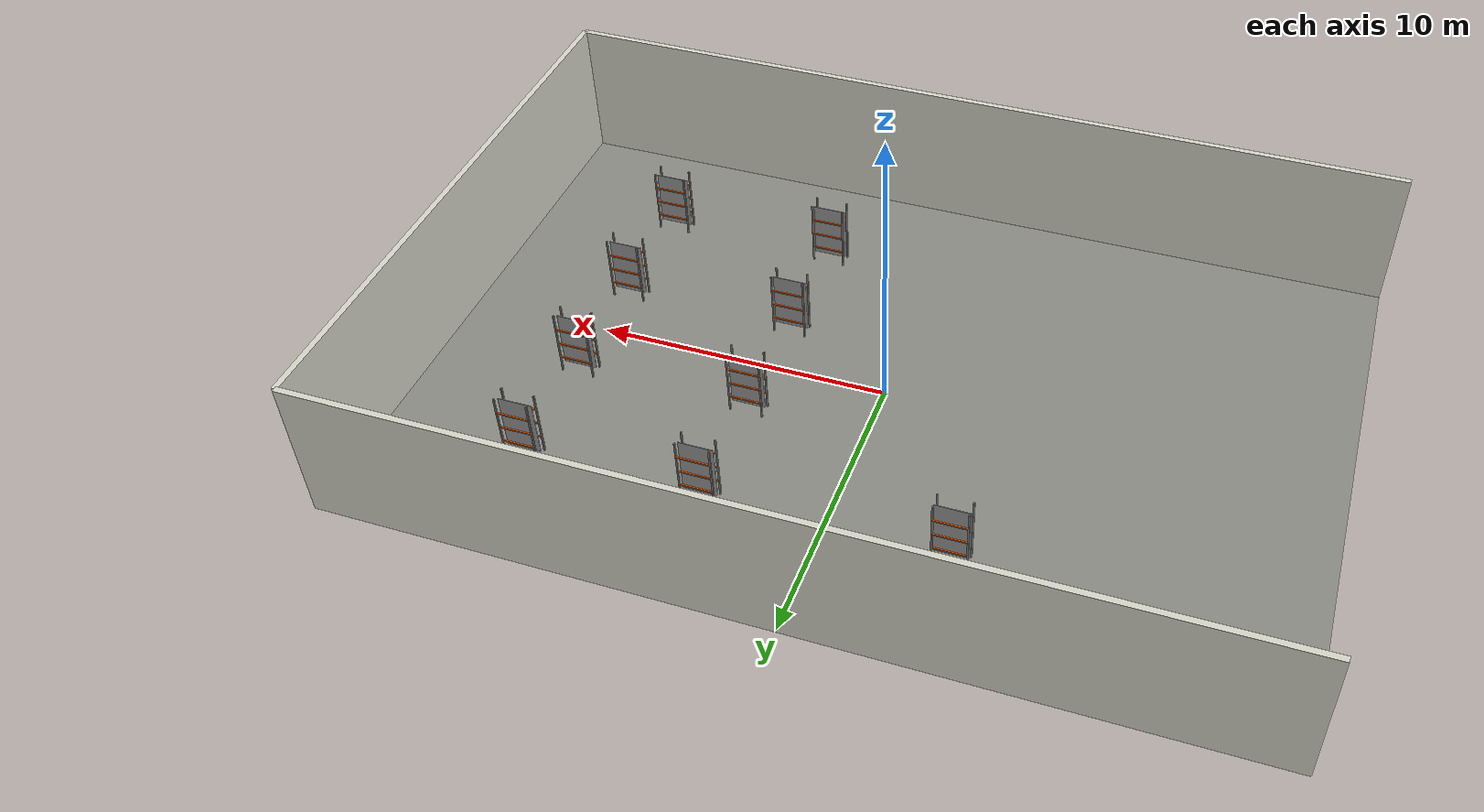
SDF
<sdf version="1.8">
 <world name="amr_world">
  <model name="floor">
   <static>true</static>
   <pose>0 0 -0.01 0 0 0</pose>
   <link name="link">
    <collision name="col"><geometry><box><size>30 20 0.02</size></box></geometry></collision>
    <visual name="vis">
     <geometry><box><size>30 20 0.02</size></box></geometry>
     <material><ambient>0.55 0.55 0.52 1</ambient><diffuse>0.55 0.55 0.52 1</diffuse></material>
    </visual>
   </link>
  </model>
  <model name="wall_north">
   <static>true</static>
   <pose>0 10 2.5 0 0 0</pose>
   <link name="link">
    <collision name="col"><geometry><box><size>30 0.2 5</size></box></geometry></collision>
    <visual name="vis">
     <geometry><box><size>30 0.2 5</size></box></geometry>
     <material><ambient>0.85 0.85 0.80 1</ambient><diffuse>0.85 0.85 0.80 1</diffuse></material>
    </visual>
   </link>
  </model>
  <model name="wall_south">
   <static>true</static>
   <pose>0 -10 2.5 0 0 0</pose>
   <link name="link">
    <collision name="col"><geometry><box><size>30 0.2 5</size></box></geometry></collision>
    <visual name="vis">
     <geometry><box><size>30 0.2 5</size></box></geometry>
     <material><ambient>0.85 0.85 0.80 1</ambient><diffuse>0.85 0.85 0.80 1</diffuse></material>
    </visual>
   </link>
  </model>
  <model name="wall_east">
   <static>true</static>
   <pose>15 0 2.5 0 0 0</pose>
   <link name="link">
    <collision name="col"><geometry><box><size>0.2 20 5</size></box></geometry></collision>
    <visual name="vis">
     <geometry><box><size>0.2 20 5</size></box></geometry>
     <material><ambient>0.85 0.85 0.80 1</ambient><diffuse>0.85 0.85 0.80 1</diffuse></material>
    </visual>
   </link>
  </model>
  <model name="rack_2_4">
   <static>true</static>
   <pose>-4 6 0 0 0 0</pose>
   <link name="link">
    <visual name="p1">
     <pose>0.55 0.25 1.2 0 0 0</pose>
     <geometry><box><size>0.05 0.05 2.4</size></box></geometry>
     <material><ambient>0.4 0.4 0.4 1</ambient><diffuse>0.5 0.5 0.5 1</diffuse></material>
    </visual>
    <collision name="p1c">
     <pose>0.55 0.25 1.2 0 0 0</pose>
     <geometry><box><size>0.05 0.05 2.4</size></box></geometry>
    </collision>
    <visual name="p2">
     <pose>0.55 -0.25 1.2 0 0 0</pose>
     <geometry><box><size>0.05 0.05 2.4</size></box></geometry>
     <material><ambient>0.4 0.4 0.4 1</ambient><diffuse>0.5 0.5 0.5 1</diffuse></material>
    </visual>
    <collision name="p2c">
     <pose>0.55 -0.25 1.2 0 0 0</pose>
     <geometry><box><size>0.05 0.05 2.4</size></box></geometry>
    </collision>
    <visual name="p3">
     <pose>-0.55 0.25 1.2 0 0 0</pose>
     <geometry><box><size>0.05 0.05 2.4</size></box></geometry>
     <material><ambient>0.4 0.4 0.4 1</ambient><diffuse>0.5 0.5 0.5 1</diffuse></material>
    </visual>
    <collision name="p3c">
     <pose>-0.55 0.25 1.2 0 0 0</pose>
     <geometry><box><size>0.05 0.05 2.4</size></box></geometry>
    </collision>
    <visual name="p4">
     <pose>-0.55 -0.25 1.2 0 0 0</pose>
     <geometry><box><size>0.05 0.05 2.4</size></box></geometry>
     <material><ambient>0.4 0.4 0.4 1</ambient><diffuse>0.5 0.5 0.5 1</diffuse></material>
    </visual>
    <collision name="p4c">
     <pose>-0.55 -0.25 1.2 0 0 0</pose>
     <geometry><box><size>0.05 0.05 2.4</size></box></geometry>
    </collision>
    <visual name="b1l">
     <pose>0 0.25 0.60 0 0 0</pose>
     <geometry><box><size>1.15 0.05 0.04</size></box></geometry>
     <material><ambient>0.85 0.35 0.05 1</ambient><diffuse>0.85 0.35 0.05 1</diffuse></material>
    </visual>
    <collision name="b1lc">
     <pose>0 0.25 0.60 0 0 0</pose>
     <geometry><box><size>1.15 0.05 0.04</size></box></geometry>
    </collision>
    <visual name="b1r">
     <pose>0 -0.25 0.60 0 0 0</pose>
     <geometry><box><size>1.15 0.05 0.04</size></box></geometry>
     <material><ambient>0.85 0.35 0.05 1</ambient><diffuse>0.85 0.35 0.05 1</diffuse></material>
    </visual>
    <collision name="b1rc">
     <pose>0 -0.25 0.60 0 0 0</pose>
     <geometry><box><size>1.15 0.05 0.04</size></box></geometry>
    </collision>
    <visual name="b2l">
     <pose>0 0.25 1.20 0 0 0</pose>
     <geometry><box><size>1.15 0.05 0.04</size></box></geometry>
     <material><ambient>0.85 0.35 0.05 1</ambient><diffuse>0.85 0.35 0.05 1</diffuse></material>
    </visual>
    <collision name="b2lc">
     <pose>0 0.25 1.20 0 0 0</pose>
     <geometry><box><size>1.15 0.05 0.04</size></box></geometry>
    </collision>
    <visual name="b2r">
     <pose>0 -0.25 1.20 0 0 0</pose>
     <geometry><box><size>1.15 0.05 0.04</size></box></geometry>
     <material><ambient>0.85 0.35 0.05 1</ambient><diffuse>0.85 0.35 0.05 1</diffuse></material>
    </visual>
    <collision name="b2rc">
     <pose>0 -0.25 1.20 0 0 0</pose>
     <geometry><box><size>1.15 0.05 0.04</size></box></geometry>
    </collision>
    <visual name="b3l">
     <pose>0 0.25 1.80 0 0 0</pose>
     <geometry><box><size>1.15 0.05 0.04</size></box></geometry>
     <material><ambient>0.85 0.35 0.05 1</ambient><diffuse>0.85 0.35 0.05 1</diffuse></material>
    </visual>
    <collision name="b3lc">
     <pose>0 0.25 1.80 0 0 0</pose>
     <geometry><box><size>1.15 0.05 0.04</size></box></geometry>
    </collision>
    <visual name="b3r">
     <pose>0 -0.25 1.80 0 0 0</pose>
     <geometry><box><size>1.15 0.05 0.04</size></box></geometry>
     <material><ambient>0.85 0.35 0.05 1</ambient><diffuse>0.85 0.35 0.05 1</diffuse></material>
    </visual>
    <collision name="b3rc">
     <pose>0 -0.25 1.80 0 0 0</pose>
     <geometry><box><size>1.15 0.05 0.04</size></box></geometry>
    </collision>
    <visual name="brace">
     <pose>0 0 1.2 0 0 0</pose>
     <geometry><box><size>1.15 0.02 2.0</size></box></geometry>
     <material><ambient>0.6 0.6 0.6 1</ambient><diffuse>0.6 0.6 0.6 1</diffuse></material>
    </visual>
   </link>
  </model>
  <model name="rack_3_1">
   <static>true</static>
   <pose>4 -6 0 0 0 0</pose>
   <link name="link">
    <visual name="p1">
     <pose>0.55 0.25 1.2 0 0 0</pose>
     <geometry><box><size>0.05 0.05 2.4</size></box></geometry>
     <material><ambient>0.4 0.4 0.4 1</ambient><diffuse>0.5 0.5 0.5 1</diffuse></material>
    </visual>
    <collision name="p1c">
     <pose>0.55 0.25 1.2 0 0 0</pose>
     <geometry><box><size>0.05 0.05 2.4</size></box></geometry>
    </collision>
    <visual name="p2">
     <pose>0.55 -0.25 1.2 0 0 0</pose>
     <geometry><box><size>0.05 0.05 2.4</size></box></geometry>
     <material><ambient>0.4 0.4 0.4 1</ambient><diffuse>0.5 0.5 0.5 1</diffuse></material>
    </visual>
    <collision name="p2c">
     <pose>0.55 -0.25 1.2 0 0 0</pose>
     <geometry><box><size>0.05 0.05 2.4</size></box></geometry>
    </collision>
    <visual name="p3">
     <pose>-0.55 0.25 1.2 0 0 0</pose>
     <geometry><box><size>0.05 0.05 2.4</size></box></geometry>
     <material><ambient>0.4 0.4 0.4 1</ambient><diffuse>0.5 0.5 0.5 1</diffuse></material>
    </visual>
    <collision name="p3c">
     <pose>-0.55 0.25 1.2 0 0 0</pose>
     <geometry><box><size>0.05 0.05 2.4</size></box></geometry>
    </collision>
    <visual name="p4">
     <pose>-0.55 -0.25 1.2 0 0 0</pose>
     <geometry><box><size>0.05 0.05 2.4</size></box></geometry>
     <material><ambient>0.4 0.4 0.4 1</ambient><diffuse>0.5 0.5 0.5 1</diffuse></material>
    </visual>
    <collision name="p4c">
     <pose>-0.55 -0.25 1.2 0 0 0</pose>
     <geometry><box><size>0.05 0.05 2.4</size></box></geometry>
    </collision>
    <visual name="b1l">
     <pose>0 0.25 0.60 0 0 0</pose>
     <geometry><box><size>1.15 0.05 0.04</size></box></geometry>
     <material><ambient>0.85 0.35 0.05 1</ambient><diffuse>0.85 0.35 0.05 1</diffuse></material>
    </visual>
    <collision name="b1lc">
     <pose>0 0.25 0.60 0 0 0</pose>
     <geometry><box><size>1.15 0.05 0.04</size></box></geometry>
    </collision>
    <visual name="b1r">
     <pose>0 -0.25 0.60 0 0 0</pose>
     <geometry><box><size>1.15 0.05 0.04</size></box></geometry>
     <material><ambient>0.85 0.35 0.05 1</ambient><diffuse>0.85 0.35 0.05 1</diffuse></material>
    </visual>
    <collision name="b1rc">
     <pose>0 -0.25 0.60 0 0 0</pose>
     <geometry><box><size>1.15 0.05 0.04</size></box></geometry>
    </collision>
    <visual name="b2l">
     <pose>0 0.25 1.20 0 0 0</pose>
     <geometry><box><size>1.15 0.05 0.04</size></box></geometry>
     <material><ambient>0.85 0.35 0.05 1</ambient><diffuse>0.85 0.35 0.05 1</diffuse></material>
    </visual>
    <collision name="b2lc">
     <pose>0 0.25 1.20 0 0 0</pose>
     <geometry><box><size>1.15 0.05 0.04</size></box></geometry>
    </collision>
    <visual name="b2r">
     <pose>0 -0.25 1.20 0 0 0</pose>
     <geometry><box><size>1.15 0.05 0.04</size></box></geometry>
     <material><ambient>0.85 0.35 0.05 1</ambient><diffuse>0.85 0.35 0.05 1</diffuse></material>
    </visual>
    <collision name="b2rc">
     <pose>0 -0.25 1.20 0 0 0</pose>
     <geometry><box><size>1.15 0.05 0.04</size></box></geometry>
    </collision>
    <visual name="b3l">
     <pose>0 0.25 1.80 0 0 0</pose>
     <geometry><box><size>1.15 0.05 0.04</size></box></geometry>
     <material><ambient>0.85 0.35 0.05 1</ambient><diffuse>0.85 0.35 0.05 1</diffuse></material>
    </visual>
    <collision name="b3lc">
     <pose>0 0.25 1.80 0 0 0</pose>
     <geometry><box><size>1.15 0.05 0.04</size></box></geometry>
    </collision>
    <visual name="b3r">
     <pose>0 -0.25 1.80 0 0 0</pose>
     <geometry><box><size>1.15 0.05 0.04</size></box></geometry>
     <material><ambient>0.85 0.35 0.05 1</ambient><diffuse>0.85 0.35 0.05 1</diffuse></material>
    </visual>
    <collision name="b3rc">
     <pose>0 -0.25 1.80 0 0 0</pose>
     <geometry><box><size>1.15 0.05 0.04</size></box></geometry>
    </collision>
    <visual name="brace">
     <pose>0 0 1.2 0 0 0</pose>
     <geometry><box><size>1.15 0.02 2.0</size></box></geometry>
     <material><ambient>0.6 0.6 0.6 1</ambient><diffuse>0.6 0.6 0.6 1</diffuse></material>
    </visual>
   </link>
  </model>
  <model name="rack_3_2">
   <static>true</static>
   <pose>4 -2 0 0 0 0</pose>
   <link name="link">
    <visual name="p1">
     <pose>0.55 0.25 1.2 0 0 0</pose>
     <geometry><box><size>0.05 0.05 2.4</size></box></geometry>
     <material><ambient>0.4 0.4 0.4 1</ambient><diffuse>0.5 0.5 0.5 1</diffuse></material>
    </visual>
    <collision name="p1c">
     <pose>0.55 0.25 1.2 0 0 0</pose>
     <geometry><box><size>0.05 0.05 2.4</size></box></geometry>
    </collision>
    <visual name="p2">
     <pose>0.55 -0.25 1.2 0 0 0</pose>
     <geometry><box><size>0.05 0.05 2.4</size></box></geometry>
     <material><ambient>0.4 0.4 0.4 1</ambient><diffuse>0.5 0.5 0.5 1</diffuse></material>
    </visual>
    <collision name="p2c">
     <pose>0.55 -0.25 1.2 0 0 0</pose>
     <geometry><box><size>0.05 0.05 2.4</size></box></geometry>
    </collision>
    <visual name="p3">
     <pose>-0.55 0.25 1.2 0 0 0</pose>
     <geometry><box><size>0.05 0.05 2.4</size></box></geometry>
     <material><ambient>0.4 0.4 0.4 1</ambient><diffuse>0.5 0.5 0.5 1</diffuse></material>
    </visual>
    <collision name="p3c">
     <pose>-0.55 0.25 1.2 0 0 0</pose>
     <geometry><box><size>0.05 0.05 2.4</size></box></geometry>
    </collision>
    <visual name="p4">
     <pose>-0.55 -0.25 1.2 0 0 0</pose>
     <geometry><box><size>0.05 0.05 2.4</size></box></geometry>
     <material><ambient>0.4 0.4 0.4 1</ambient><diffuse>0.5 0.5 0.5 1</diffuse></material>
    </visual>
    <collision name="p4c">
     <pose>-0.55 -0.25 1.2 0 0 0</pose>
     <geometry><box><size>0.05 0.05 2.4</size></box></geometry>
    </collision>
    <visual name="b1l">
     <pose>0 0.25 0.60 0 0 0</pose>
     <geometry><box><size>1.15 0.05 0.04</size></box></geometry>
     <material><ambient>0.85 0.35 0.05 1</ambient><diffuse>0.85 0.35 0.05 1</diffuse></material>
    </visual>
    <collision name="b1lc">
     <pose>0 0.25 0.60 0 0 0</pose>
     <geometry><box><size>1.15 0.05 0.04</size></box></geometry>
    </collision>
    <visual name="b1r">
     <pose>0 -0.25 0.60 0 0 0</pose>
     <geometry><box><size>1.15 0.05 0.04</size></box></geometry>
     <material><ambient>0.85 0.35 0.05 1</ambient><diffuse>0.85 0.35 0.05 1</diffuse></material>
    </visual>
    <collision name="b1rc">
     <pose>0 -0.25 0.60 0 0 0</pose>
     <geometry><box><size>1.15 0.05 0.04</size></box></geometry>
    </collision>
    <visual name="b2l">
     <pose>0 0.25 1.20 0 0 0</pose>
     <geometry><box><size>1.15 0.05 0.04</size></box></geometry>
     <material><ambient>0.85 0.35 0.05 1</ambient><diffuse>0.85 0.35 0.05 1</diffuse></material>
    </visual>
    <collision name="b2lc">
     <pose>0 0.25 1.20 0 0 0</pose>
     <geometry><box><size>1.15 0.05 0.04</size></box></geometry>
    </collision>
    <visual name="b2r">
     <pose>0 -0.25 1.20 0 0 0</pose>
     <geometry><box><size>1.15 0.05 0.04</size></box></geometry>
     <material><ambient>0.85 0.35 0.05 1</ambient><diffuse>0.85 0.35 0.05 1</diffuse></material>
    </visual>
    <collision name="b2rc">
     <pose>0 -0.25 1.20 0 0 0</pose>
     <geometry><box><size>1.15 0.05 0.04</size></box></geometry>
    </collision>
    <visual name="b3l">
     <pose>0 0.25 1.80 0 0 0</pose>
     <geometry><box><size>1.15 0.05 0.04</size></box></geometry>
     <material><ambient>0.85 0.35 0.05 1</ambient><diffuse>0.85 0.35 0.05 1</diffuse></material>
    </visual>
    <collision name="b3lc">
     <pose>0 0.25 1.80 0 0 0</pose>
     <geometry><box><size>1.15 0.05 0.04</size></box></geometry>
    </collision>
    <visual name="b3r">
     <pose>0 -0.25 1.80 0 0 0</pose>
     <geometry><box><size>1.15 0.05 0.04</size></box></geometry>
     <material><ambient>0.85 0.35 0.05 1</ambient><diffuse>0.85 0.35 0.05 1</diffuse></material>
    </visual>
    <collision name="b3rc">
     <pose>0 -0.25 1.80 0 0 0</pose>
     <geometry><box><size>1.15 0.05 0.04</size></box></geometry>
    </collision>
    <visual name="brace">
     <pose>0 0 1.2 0 0 0</pose>
     <geometry><box><size>1.15 0.02 2.0</size></box></geometry>
     <material><ambient>0.6 0.6 0.6 1</ambient><diffuse>0.6 0.6 0.6 1</diffuse></material>
    </visual>
   </link>
  </model>
  <model name="rack_3_3">
   <static>true</static>
   <pose>4 2 0 0 0 0</pose>
   <link name="link">
    <visual name="p1">
     <pose>0.55 0.25 1.2 0 0 0</pose>
     <geometry><box><size>0.05 0.05 2.4</size></box></geometry>
     <material><ambient>0.4 0.4 0.4 1</ambient><diffuse>0.5 0.5 0.5 1</diffuse></material>
    </visual>
    <collision name="p1c">
     <pose>0.55 0.25 1.2 0 0 0</pose>
     <geometry><box><size>0.05 0.05 2.4</size></box></geometry>
    </collision>
    <visual name="p2">
     <pose>0.55 -0.25 1.2 0 0 0</pose>
     <geometry><box><size>0.05 0.05 2.4</size></box></geometry>
     <material><ambient>0.4 0.4 0.4 1</ambient><diffuse>0.5 0.5 0.5 1</diffuse></material>
    </visual>
    <collision name="p2c">
     <pose>0.55 -0.25 1.2 0 0 0</pose>
     <geometry><box><size>0.05 0.05 2.4</size></box></geometry>
    </collision>
    <visual name="p3">
     <pose>-0.55 0.25 1.2 0 0 0</pose>
     <geometry><box><size>0.05 0.05 2.4</size></box></geometry>
     <material><ambient>0.4 0.4 0.4 1</ambient><diffuse>0.5 0.5 0.5 1</diffuse></material>
    </visual>
    <collision name="p3c">
     <pose>-0.55 0.25 1.2 0 0 0</pose>
     <geometry><box><size>0.05 0.05 2.4</size></box></geometry>
    </collision>
    <visual name="p4">
     <pose>-0.55 -0.25 1.2 0 0 0</pose>
     <geometry><box><size>0.05 0.05 2.4</size></box></geometry>
     <material><ambient>0.4 0.4 0.4 1</ambient><diffuse>0.5 0.5 0.5 1</diffuse></material>
    </visual>
    <collision name="p4c">
     <pose>-0.55 -0.25 1.2 0 0 0</pose>
     <geometry><box><size>0.05 0.05 2.4</size></box></geometry>
    </collision>
    <visual name="b1l">
     <pose>0 0.25 0.60 0 0 0</pose>
     <geometry><box><size>1.15 0.05 0.04</size></box></geometry>
     <material><ambient>0.85 0.35 0.05 1</ambient><diffuse>0.85 0.35 0.05 1</diffuse></material>
    </visual>
    <collision name="b1lc">
     <pose>0 0.25 0.60 0 0 0</pose>
     <geometry><box><size>1.15 0.05 0.04</size></box></geometry>
    </collision>
    <visual name="b1r">
     <pose>0 -0.25 0.60 0 0 0</pose>
     <geometry><box><size>1.15 0.05 0.04</size></box></geometry>
     <material><ambient>0.85 0.35 0.05 1</ambient><diffuse>0.85 0.35 0.05 1</diffuse></material>
    </visual>
    <collision name="b1rc">
     <pose>0 -0.25 0.60 0 0 0</pose>
     <geometry><box><size>1.15 0.05 0.04</size></box></geometry>
    </collision>
    <visual name="b2l">
     <pose>0 0.25 1.20 0 0 0</pose>
     <geometry><box><size>1.15 0.05 0.04</size></box></geometry>
     <material><ambient>0.85 0.35 0.05 1</ambient><diffuse>0.85 0.35 0.05 1</diffuse></material>
    </visual>
    <collision name="b2lc">
     <pose>0 0.25 1.20 0 0 0</pose>
     <geometry><box><size>1.15 0.05 0.04</size></box></geometry>
    </collision>
    <visual name="b2r">
     <pose>0 -0.25 1.20 0 0 0</pose>
     <geometry><box><size>1.15 0.05 0.04</size></box></geometry>
     <material><ambient>0.85 0.35 0.05 1</ambient><diffuse>0.85 0.35 0.05 1</diffuse></material>
    </visual>
    <collision name="b2rc">
     <pose>0 -0.25 1.20 0 0 0</pose>
     <geometry><box><size>1.15 0.05 0.04</size></box></geometry>
    </collision>
    <visual name="b3l">
     <pose>0 0.25 1.80 0 0 0</pose>
     <geometry><box><size>1.15 0.05 0.04</size></box></geometry>
     <material><ambient>0.85 0.35 0.05 1</ambient><diffuse>0.85 0.35 0.05 1</diffuse></material>
    </visual>
    <collision name="b3lc">
     <pose>0 0.25 1.80 0 0 0</pose>
     <geometry><box><size>1.15 0.05 0.04</size></box></geometry>
    </collision>
    <visual name="b3r">
     <pose>0 -0.25 1.80 0 0 0</pose>
     <geometry><box><size>1.15 0.05 0.04</size></box></geometry>
     <material><ambient>0.85 0.35 0.05 1</ambient><diffuse>0.85 0.35 0.05 1</diffuse></material>
    </visual>
    <collision name="b3rc">
     <pose>0 -0.25 1.80 0 0 0</pose>
     <geometry><box><size>1.15 0.05 0.04</size></box></geometry>
    </collision>
    <visual name="brace">
     <pose>0 0 1.2 0 0 0</pose>
     <geometry><box><size>1.15 0.02 2.0</size></box></geometry>
     <material><ambient>0.6 0.6 0.6 1</ambient><diffuse>0.6 0.6 0.6 1</diffuse></material>
    </visual>
   </link>
  </model>
  <model name="rack_3_4">
   <static>true</static>
   <pose>4 6 0 0 0 0</pose>
   <link name="link">
    <visual name="p1">
     <pose>0.55 0.25 1.2 0 0 0</pose>
     <geometry><box><size>0.05 0.05 2.4</size></box></geometry>
     <material><ambient>0.4 0.4 0.4 1</ambient><diffuse>0.5 0.5 0.5 1</diffuse></material>
    </visual>
    <collision name="p1c">
     <pose>0.55 0.25 1.2 0 0 0</pose>
     <geometry><box><size>0.05 0.05 2.4</size></box></geometry>
    </collision>
    <visual name="p2">
     <pose>0.55 -0.25 1.2 0 0 0</pose>
     <geometry><box><size>0.05 0.05 2.4</size></box></geometry>
     <material><ambient>0.4 0.4 0.4 1</ambient><diffuse>0.5 0.5 0.5 1</diffuse></material>
    </visual>
    <collision name="p2c">
     <pose>0.55 -0.25 1.2 0 0 0</pose>
     <geometry><box><size>0.05 0.05 2.4</size></box></geometry>
    </collision>
    <visual name="p3">
     <pose>-0.55 0.25 1.2 0 0 0</pose>
     <geometry><box><size>0.05 0.05 2.4</size></box></geometry>
     <material><ambient>0.4 0.4 0.4 1</ambient><diffuse>0.5 0.5 0.5 1</diffuse></material>
    </visual>
    <collision name="p3c">
     <pose>-0.55 0.25 1.2 0 0 0</pose>
     <geometry><box><size>0.05 0.05 2.4</size></box></geometry>
    </collision>
    <visual name="p4">
     <pose>-0.55 -0.25 1.2 0 0 0</pose>
     <geometry><box><size>0.05 0.05 2.4</size></box></geometry>
     <material><ambient>0.4 0.4 0.4 1</ambient><diffuse>0.5 0.5 0.5 1</diffuse></material>
    </visual>
    <collision name="p4c">
     <pose>-0.55 -0.25 1.2 0 0 0</pose>
     <geometry><box><size>0.05 0.05 2.4</size></box></geometry>
    </collision>
    <visual name="b1l">
     <pose>0 0.25 0.60 0 0 0</pose>
     <geometry><box><size>1.15 0.05 0.04</size></box></geometry>
     <material><ambient>0.85 0.35 0.05 1</ambient><diffuse>0.85 0.35 0.05 1</diffuse></material>
    </visual>
    <collision name="b1lc">
     <pose>0 0.25 0.60 0 0 0</pose>
     <geometry><box><size>1.15 0.05 0.04</size></box></geometry>
    </collision>
    <visual name="b1r">
     <pose>0 -0.25 0.60 0 0 0</pose>
     <geometry><box><size>1.15 0.05 0.04</size></box></geometry>
     <material><ambient>0.85 0.35 0.05 1</ambient><diffuse>0.85 0.35 0.05 1</diffuse></material>
    </visual>
    <collision name="b1rc">
     <pose>0 -0.25 0.60 0 0 0</pose>
     <geometry><box><size>1.15 0.05 0.04</size></box></geometry>
    </collision>
    <visual name="b2l">
     <pose>0 0.25 1.20 0 0 0</pose>
     <geometry><box><size>1.15 0.05 0.04</size></box></geometry>
     <material><ambient>0.85 0.35 0.05 1</ambient><diffuse>0.85 0.35 0.05 1</diffuse></material>
    </visual>
    <collision name="b2lc">
     <pose>0 0.25 1.20 0 0 0</pose>
     <geometry><box><size>1.15 0.05 0.04</size></box></geometry>
    </collision>
    <visual name="b2r">
     <pose>0 -0.25 1.20 0 0 0</pose>
     <geometry><box><size>1.15 0.05 0.04</size></box></geometry>
     <material><ambient>0.85 0.35 0.05 1</ambient><diffuse>0.85 0.35 0.05 1</diffuse></material>
    </visual>
    <collision name="b2rc">
     <pose>0 -0.25 1.20 0 0 0</pose>
     <geometry><box><size>1.15 0.05 0.04</size></box></geometry>
    </collision>
    <visual name="b3l">
     <pose>0 0.25 1.80 0 0 0</pose>
     <geometry><box><size>1.15 0.05 0.04</size></box></geometry>
     <material><ambient>0.85 0.35 0.05 1</ambient><diffuse>0.85 0.35 0.05 1</diffuse></material>
    </visual>
    <collision name="b3lc">
     <pose>0 0.25 1.80 0 0 0</pose>
     <geometry><box><size>1.15 0.05 0.04</size></box></geometry>
    </collision>
    <visual name="b3r">
     <pose>0 -0.25 1.80 0 0 0</pose>
     <geometry><box><size>1.15 0.05 0.04</size></box></geometry>
     <material><ambient>0.85 0.35 0.05 1</ambient><diffuse>0.85 0.35 0.05 1</diffuse></material>
    </visual>
    <collision name="b3rc">
     <pose>0 -0.25 1.80 0 0 0</pose>
     <geometry><box><size>1.15 0.05 0.04</size></box></geometry>
    </collision>
    <visual name="brace">
     <pose>0 0 1.2 0 0 0</pose>
     <geometry><box><size>1.15 0.02 2.0</size></box></geometry>
     <material><ambient>0.6 0.6 0.6 1</ambient><diffuse>0.6 0.6 0.6 1</diffuse></material>
    </visual>
   </link>
  </model>
  <model name="rack_4_1">
   <static>true</static>
   <pose>10 -6 0 0 0 0</pose>
   <link name="link">
    <visual name="p1">
     <pose>0.55 0.25 1.2 0 0 0</pose>
     <geometry><box><size>0.05 0.05 2.4</size></box></geometry>
     <material><ambient>0.4 0.4 0.4 1</ambient><diffuse>0.5 0.5 0.5 1</diffuse></material>
    </visual>
    <collision name="p1c">
     <pose>0.55 0.25 1.2 0 0 0</pose>
     <geometry><box><size>0.05 0.05 2.4</size></box></geometry>
    </collision>
    <visual name="p2">
     <pose>0.55 -0.25 1.2 0 0 0</pose>
     <geometry><box><size>0.05 0.05 2.4</size></box></geometry>
     <material><ambient>0.4 0.4 0.4 1</ambient><diffuse>0.5 0.5 0.5 1</diffuse></material>
    </visual>
    <collision name="p2c">
     <pose>0.55 -0.25 1.2 0 0 0</pose>
     <geometry><box><size>0.05 0.05 2.4</size></box></geometry>
    </collision>
    <visual name="p3">
     <pose>-0.55 0.25 1.2 0 0 0</pose>
     <geometry><box><size>0.05 0.05 2.4</size></box></geometry>
     <material><ambient>0.4 0.4 0.4 1</ambient><diffuse>0.5 0.5 0.5 1</diffuse></material>
    </visual>
    <collision name="p3c">
     <pose>-0.55 0.25 1.2 0 0 0</pose>
     <geometry><box><size>0.05 0.05 2.4</size></box></geometry>
    </collision>
    <visual name="p4">
     <pose>-0.55 -0.25 1.2 0 0 0</pose>
     <geometry><box><size>0.05 0.05 2.4</size></box></geometry>
     <material><ambient>0.4 0.4 0.4 1</ambient><diffuse>0.5 0.5 0.5 1</diffuse></material>
    </visual>
    <collision name="p4c">
     <pose>-0.55 -0.25 1.2 0 0 0</pose>
     <geometry><box><size>0.05 0.05 2.4</size></box></geometry>
    </collision>
    <visual name="b1l">
     <pose>0 0.25 0.60 0 0 0</pose>
     <geometry><box><size>1.15 0.05 0.04</size></box></geometry>
     <material><ambient>0.85 0.35 0.05 1</ambient><diffuse>0.85 0.35 0.05 1</diffuse></material>
    </visual>
    <collision name="b1lc">
     <pose>0 0.25 0.60 0 0 0</pose>
     <geometry><box><size>1.15 0.05 0.04</size></box></geometry>
    </collision>
    <visual name="b1r">
     <pose>0 -0.25 0.60 0 0 0</pose>
     <geometry><box><size>1.15 0.05 0.04</size></box></geometry>
     <material><ambient>0.85 0.35 0.05 1</ambient><diffuse>0.85 0.35 0.05 1</diffuse></material>
    </visual>
    <collision name="b1rc">
     <pose>0 -0.25 0.60 0 0 0</pose>
     <geometry><box><size>1.15 0.05 0.04</size></box></geometry>
    </collision>
    <visual name="b2l">
     <pose>0 0.25 1.20 0 0 0</pose>
     <geometry><box><size>1.15 0.05 0.04</size></box></geometry>
     <material><ambient>0.85 0.35 0.05 1</ambient><diffuse>0.85 0.35 0.05 1</diffuse></material>
    </visual>
    <collision name="b2lc">
     <pose>0 0.25 1.20 0 0 0</pose>
     <geometry><box><size>1.15 0.05 0.04</size></box></geometry>
    </collision>
    <visual name="b2r">
     <pose>0 -0.25 1.20 0 0 0</pose>
     <geometry><box><size>1.15 0.05 0.04</size></box></geometry>
     <material><ambient>0.85 0.35 0.05 1</ambient><diffuse>0.85 0.35 0.05 1</diffuse></material>
    </visual>
    <collision name="b2rc">
     <pose>0 -0.25 1.20 0 0 0</pose>
     <geometry><box><size>1.15 0.05 0.04</size></box></geometry>
    </collision>
    <visual name="b3l">
     <pose>0 0.25 1.80 0 0 0</pose>
     <geometry><box><size>1.15 0.05 0.04</size></box></geometry>
     <material><ambient>0.85 0.35 0.05 1</ambient><diffuse>0.85 0.35 0.05 1</diffuse></material>
    </visual>
    <collision name="b3lc">
     <pose>0 0.25 1.80 0 0 0</pose>
     <geometry><box><size>1.15 0.05 0.04</size></box></geometry>
    </collision>
    <visual name="b3r">
     <pose>0 -0.25 1.80 0 0 0</pose>
     <geometry><box><size>1.15 0.05 0.04</size></box></geometry>
     <material><ambient>0.85 0.35 0.05 1</ambient><diffuse>0.85 0.35 0.05 1</diffuse></material>
    </visual>
    <collision name="b3rc">
     <pose>0 -0.25 1.80 0 0 0</pose>
     <geometry><box><size>1.15 0.05 0.04</size></box></geometry>
    </collision>
    <visual name="brace">
     <pose>0 0 1.2 0 0 0</pose>
     <geometry><box><size>1.15 0.02 2.0</size></box></geometry>
     <material><ambient>0.6 0.6 0.6 1</ambient><diffuse>0.6 0.6 0.6 1</diffuse></material>
    </visual>
   </link>
  </model>
  <model name="rack_4_2">
   <static>true</static>
   <pose>10 -2 0 0 0 0</pose>
   <link name="link">
    <visual name="p1">
     <pose>0.55 0.25 1.2 0 0 0</pose>
     <geometry><box><size>0.05 0.05 2.4</size></box></geometry>
     <material><ambient>0.4 0.4 0.4 1</ambient><diffuse>0.5 0.5 0.5 1</diffuse></material>
    </visual>
    <collision name="p1c">
     <pose>0.55 0.25 1.2 0 0 0</pose>
     <geometry><box><size>0.05 0.05 2.4</size></box></geometry>
    </collision>
    <visual name="p2">
     <pose>0.55 -0.25 1.2 0 0 0</pose>
     <geometry><box><size>0.05 0.05 2.4</size></box></geometry>
     <material><ambient>0.4 0.4 0.4 1</ambient><diffuse>0.5 0.5 0.5 1</diffuse></material>
    </visual>
    <collision name="p2c">
     <pose>0.55 -0.25 1.2 0 0 0</pose>
     <geometry><box><size>0.05 0.05 2.4</size></box></geometry>
    </collision>
    <visual name="p3">
     <pose>-0.55 0.25 1.2 0 0 0</pose>
     <geometry><box><size>0.05 0.05 2.4</size></box></geometry>
     <material><ambient>0.4 0.4 0.4 1</ambient><diffuse>0.5 0.5 0.5 1</diffuse></material>
    </visual>
    <collision name="p3c">
     <pose>-0.55 0.25 1.2 0 0 0</pose>
     <geometry><box><size>0.05 0.05 2.4</size></box></geometry>
    </collision>
    <visual name="p4">
     <pose>-0.55 -0.25 1.2 0 0 0</pose>
     <geometry><box><size>0.05 0.05 2.4</size></box></geometry>
     <material><ambient>0.4 0.4 0.4 1</ambient><diffuse>0.5 0.5 0.5 1</diffuse></material>
    </visual>
    <collision name="p4c">
     <pose>-0.55 -0.25 1.2 0 0 0</pose>
     <geometry><box><size>0.05 0.05 2.4</size></box></geometry>
    </collision>
    <visual name="b1l">
     <pose>0 0.25 0.60 0 0 0</pose>
     <geometry><box><size>1.15 0.05 0.04</size></box></geometry>
     <material><ambient>0.85 0.35 0.05 1</ambient><diffuse>0.85 0.35 0.05 1</diffuse></material>
    </visual>
    <collision name="b1lc">
     <pose>0 0.25 0.60 0 0 0</pose>
     <geometry><box><size>1.15 0.05 0.04</size></box></geometry>
    </collision>
    <visual name="b1r">
     <pose>0 -0.25 0.60 0 0 0</pose>
     <geometry><box><size>1.15 0.05 0.04</size></box></geometry>
     <material><ambient>0.85 0.35 0.05 1</ambient><diffuse>0.85 0.35 0.05 1</diffuse></material>
    </visual>
    <collision name="b1rc">
     <pose>0 -0.25 0.60 0 0 0</pose>
     <geometry><box><size>1.15 0.05 0.04</size></box></geometry>
    </collision>
    <visual name="b2l">
     <pose>0 0.25 1.20 0 0 0</pose>
     <geometry><box><size>1.15 0.05 0.04</size></box></geometry>
     <material><ambient>0.85 0.35 0.05 1</ambient><diffuse>0.85 0.35 0.05 1</diffuse></material>
    </visual>
    <collision name="b2lc">
     <pose>0 0.25 1.20 0 0 0</pose>
     <geometry><box><size>1.15 0.05 0.04</size></box></geometry>
    </collision>
    <visual name="b2r">
     <pose>0 -0.25 1.20 0 0 0</pose>
     <geometry><box><size>1.15 0.05 0.04</size></box></geometry>
     <material><ambient>0.85 0.35 0.05 1</ambient><diffuse>0.85 0.35 0.05 1</diffuse></material>
    </visual>
    <collision name="b2rc">
     <pose>0 -0.25 1.20 0 0 0</pose>
     <geometry><box><size>1.15 0.05 0.04</size></box></geometry>
    </collision>
    <visual name="b3l">
     <pose>0 0.25 1.80 0 0 0</pose>
     <geometry><box><size>1.15 0.05 0.04</size></box></geometry>
     <material><ambient>0.85 0.35 0.05 1</ambient><diffuse>0.85 0.35 0.05 1</diffuse></material>
    </visual>
    <collision name="b3lc">
     <pose>0 0.25 1.80 0 0 0</pose>
     <geometry><box><size>1.15 0.05 0.04</size></box></geometry>
    </collision>
    <visual name="b3r">
     <pose>0 -0.25 1.80 0 0 0</pose>
     <geometry><box><size>1.15 0.05 0.04</size></box></geometry>
     <material><ambient>0.85 0.35 0.05 1</ambient><diffuse>0.85 0.35 0.05 1</diffuse></material>
    </visual>
    <collision name="b3rc">
     <pose>0 -0.25 1.80 0 0 0</pose>
     <geometry><box><size>1.15 0.05 0.04</size></box></geometry>
    </collision>
    <visual name="brace">
     <pose>0 0 1.2 0 0 0</pose>
     <geometry><box><size>1.15 0.02 2.0</size></box></geometry>
     <material><ambient>0.6 0.6 0.6 1</ambient><diffuse>0.6 0.6 0.6 1</diffuse></material>
    </visual>
   </link>
  </model>
  <model name="rack_4_3">
   <static>true</static>
   <pose>10 2 0 0 0 0</pose>
   <link name="link">
    <visual name="p1">
     <pose>0.55 0.25 1.2 0 0 0</pose>
     <geometry><box><size>0.05 0.05 2.4</size></box></geometry>
     <material><ambient>0.4 0.4 0.4 1</ambient><diffuse>0.5 0.5 0.5 1</diffuse></material>
    </visual>
    <collision name="p1c">
     <pose>0.55 0.25 1.2 0 0 0</pose>
     <geometry><box><size>0.05 0.05 2.4</size></box></geometry>
    </collision>
    <visual name="p2">
     <pose>0.55 -0.25 1.2 0 0 0</pose>
     <geometry><box><size>0.05 0.05 2.4</size></box></geometry>
     <material><ambient>0.4 0.4 0.4 1</ambient><diffuse>0.5 0.5 0.5 1</diffuse></material>
    </visual>
    <collision name="p2c">
     <pose>0.55 -0.25 1.2 0 0 0</pose>
     <geometry><box><size>0.05 0.05 2.4</size></box></geometry>
    </collision>
    <visual name="p3">
     <pose>-0.55 0.25 1.2 0 0 0</pose>
     <geometry><box><size>0.05 0.05 2.4</size></box></geometry>
     <material><ambient>0.4 0.4 0.4 1</ambient><diffuse>0.5 0.5 0.5 1</diffuse></material>
    </visual>
    <collision name="p3c">
     <pose>-0.55 0.25 1.2 0 0 0</pose>
     <geometry><box><size>0.05 0.05 2.4</size></box></geometry>
    </collision>
    <visual name="p4">
     <pose>-0.55 -0.25 1.2 0 0 0</pose>
     <geometry><box><size>0.05 0.05 2.4</size></box></geometry>
     <material><ambient>0.4 0.4 0.4 1</ambient><diffuse>0.5 0.5 0.5 1</diffuse></material>
    </visual>
    <collision name="p4c">
     <pose>-0.55 -0.25 1.2 0 0 0</pose>
     <geometry><box><size>0.05 0.05 2.4</size></box></geometry>
    </collision>
    <visual name="b1l">
     <pose>0 0.25 0.60 0 0 0</pose>
     <geometry><box><size>1.15 0.05 0.04</size></box></geometry>
     <material><ambient>0.85 0.35 0.05 1</ambient><diffuse>0.85 0.35 0.05 1</diffuse></material>
    </visual>
    <collision name="b1lc">
     <pose>0 0.25 0.60 0 0 0</pose>
     <geometry><box><size>1.15 0.05 0.04</size></box></geometry>
    </collision>
    <visual name="b1r">
     <pose>0 -0.25 0.60 0 0 0</pose>
     <geometry><box><size>1.15 0.05 0.04</size></box></geometry>
     <material><ambient>0.85 0.35 0.05 1</ambient><diffuse>0.85 0.35 0.05 1</diffuse></material>
    </visual>
    <collision name="b1rc">
     <pose>0 -0.25 0.60 0 0 0</pose>
     <geometry><box><size>1.15 0.05 0.04</size></box></geometry>
    </collision>
    <visual name="b2l">
     <pose>0 0.25 1.20 0 0 0</pose>
     <geometry><box><size>1.15 0.05 0.04</size></box></geometry>
     <material><ambient>0.85 0.35 0.05 1</ambient><diffuse>0.85 0.35 0.05 1</diffuse></material>
    </visual>
    <collision name="b2lc">
     <pose>0 0.25 1.20 0 0 0</pose>
     <geometry><box><size>1.15 0.05 0.04</size></box></geometry>
    </collision>
    <visual name="b2r">
     <pose>0 -0.25 1.20 0 0 0</pose>
     <geometry><box><size>1.15 0.05 0.04</size></box></geometry>
     <material><ambient>0.85 0.35 0.05 1</ambient><diffuse>0.85 0.35 0.05 1</diffuse></material>
    </visual>
    <collision name="b2rc">
     <pose>0 -0.25 1.20 0 0 0</pose>
     <geometry><box><size>1.15 0.05 0.04</size></box></geometry>
    </collision>
    <visual name="b3l">
     <pose>0 0.25 1.80 0 0 0</pose>
     <geometry><box><size>1.15 0.05 0.04</size></box></geometry>
     <material><ambient>0.85 0.35 0.05 1</ambient><diffuse>0.85 0.35 0.05 1</diffuse></material>
    </visual>
    <collision name="b3lc">
     <pose>0 0.25 1.80 0 0 0</pose>
     <geometry><box><size>1.15 0.05 0.04</size></box></geometry>
    </collision>
    <visual name="b3r">
     <pose>0 -0.25 1.80 0 0 0</pose>
     <geometry><box><size>1.15 0.05 0.04</size></box></geometry>
     <material><ambient>0.85 0.35 0.05 1</ambient><diffuse>0.85 0.35 0.05 1</diffuse></material>
    </visual>
    <collision name="b3rc">
     <pose>0 -0.25 1.80 0 0 0</pose>
     <geometry><box><size>1.15 0.05 0.04</size></box></geometry>
    </collision>
    <visual name="brace">
     <pose>0 0 1.2 0 0 0</pose>
     <geometry><box><size>1.15 0.02 2.0</size></box></geometry>
     <material><ambient>0.6 0.6 0.6 1</ambient><diffuse>0.6 0.6 0.6 1</diffuse></material>
    </visual>
   </link>
  </model>
  <model name="rack_4_4">
   <static>true</static>
   <pose>10 6 0 0 0 0</pose>
   <link name="link">
    <visual name="p1">
     <pose>0.55 0.25 1.2 0 0 0</pose>
     <geometry><box><size>0.05 0.05 2.4</size></box></geometry>
     <material><ambient>0.4 0.4 0.4 1</ambient><diffuse>0.5 0.5 0.5 1</diffuse></material>
    </visual>
    <collision name="p1c">
     <pose>0.55 0.25 1.2 0 0 0</pose>
     <geometry><box><size>0.05 0.05 2.4</size></box></geometry>
    </collision>
    <visual name="p2">
     <pose>0.55 -0.25 1.2 0 0 0</pose>
     <geometry><box><size>0.05 0.05 2.4</size></box></geometry>
     <material><ambient>0.4 0.4 0.4 1</ambient><diffuse>0.5 0.5 0.5 1</diffuse></material>
    </visual>
    <collision name="p2c">
     <pose>0.55 -0.25 1.2 0 0 0</pose>
     <geometry><box><size>0.05 0.05 2.4</size></box></geometry>
    </collision>
    <visual name="p3">
     <pose>-0.55 0.25 1.2 0 0 0</pose>
     <geometry><box><size>0.05 0.05 2.4</size></box></geometry>
     <material><ambient>0.4 0.4 0.4 1</ambient><diffuse>0.5 0.5 0.5 1</diffuse></material>
    </visual>
    <collision name="p3c">
     <pose>-0.55 0.25 1.2 0 0 0</pose>
     <geometry><box><size>0.05 0.05 2.4</size></box></geometry>
    </collision>
    <visual name="p4">
     <pose>-0.55 -0.25 1.2 0 0 0</pose>
     <geometry><box><size>0.05 0.05 2.4</size></box></geometry>
     <material><ambient>0.4 0.4 0.4 1</ambient><diffuse>0.5 0.5 0.5 1</diffuse></material>
    </visual>
    <collision name="p4c">
     <pose>-0.55 -0.25 1.2 0 0 0</pose>
     <geometry><box><size>0.05 0.05 2.4</size></box></geometry>
    </collision>
    <visual name="b1l">
     <pose>0 0.25 0.60 0 0 0</pose>
     <geometry><box><size>1.15 0.05 0.04</size></box></geometry>
     <material><ambient>0.85 0.35 0.05 1</ambient><diffuse>0.85 0.35 0.05 1</diffuse></material>
    </visual>
    <collision name="b1lc">
     <pose>0 0.25 0.60 0 0 0</pose>
     <geometry><box><size>1.15 0.05 0.04</size></box></geometry>
    </collision>
    <visual name="b1r">
     <pose>0 -0.25 0.60 0 0 0</pose>
     <geometry><box><size>1.15 0.05 0.04</size></box></geometry>
     <material><ambient>0.85 0.35 0.05 1</ambient><diffuse>0.85 0.35 0.05 1</diffuse></material>
    </visual>
    <collision name="b1rc">
     <pose>0 -0.25 0.60 0 0 0</pose>
     <geometry><box><size>1.15 0.05 0.04</size></box></geometry>
    </collision>
    <visual name="b2l">
     <pose>0 0.25 1.20 0 0 0</pose>
     <geometry><box><size>1.15 0.05 0.04</size></box></geometry>
     <material><ambient>0.85 0.35 0.05 1</ambient><diffuse>0.85 0.35 0.05 1</diffuse></material>
    </visual>
    <collision name="b2lc">
     <pose>0 0.25 1.20 0 0 0</pose>
     <geometry><box><size>1.15 0.05 0.04</size></box></geometry>
    </collision>
    <visual name="b2r">
     <pose>0 -0.25 1.20 0 0 0</pose>
     <geometry><box><size>1.15 0.05 0.04</size></box></geometry>
     <material><ambient>0.85 0.35 0.05 1</ambient><diffuse>0.85 0.35 0.05 1</diffuse></material>
    </visual>
    <collision name="b2rc">
     <pose>0 -0.25 1.20 0 0 0</pose>
     <geometry><box><size>1.15 0.05 0.04</size></box></geometry>
    </collision>
    <visual name="b3l">
     <pose>0 0.25 1.80 0 0 0</pose>
     <geometry><box><size>1.15 0.05 0.04</size></box></geometry>
     <material><ambient>0.85 0.35 0.05 1</ambient><diffuse>0.85 0.35 0.05 1</diffuse></material>
    </visual>
    <collision name="b3lc">
     <pose>0 0.25 1.80 0 0 0</pose>
     <geometry><box><size>1.15 0.05 0.04</size></box></geometry>
    </collision>
    <visual name="b3r">
     <pose>0 -0.25 1.80 0 0 0</pose>
     <geometry><box><size>1.15 0.05 0.04</size></box></geometry>
     <material><ambient>0.85 0.35 0.05 1</ambient><diffuse>0.85 0.35 0.05 1</diffuse></material>
    </visual>
    <collision name="b3rc">
     <pose>0 -0.25 1.80 0 0 0</pose>
     <geometry><box><size>1.15 0.05 0.04</size></box></geometry>
    </collision>
    <visual name="brace">
     <pose>0 0 1.2 0 0 0</pose>
     <geometry><box><size>1.15 0.02 2.0</size></box></geometry>
     <material><ambient>0.6 0.6 0.6 1</ambient><diffuse>0.6 0.6 0.6 1</diffuse></material>
    </visual>
   </link>
  </model>
 </world>
</sdf>
